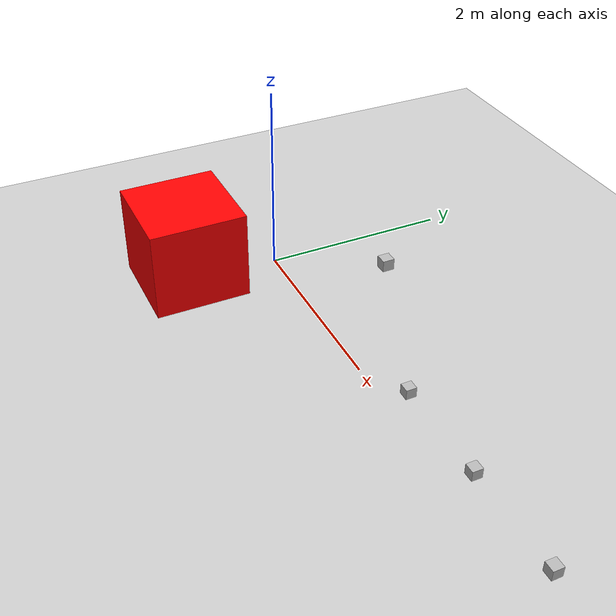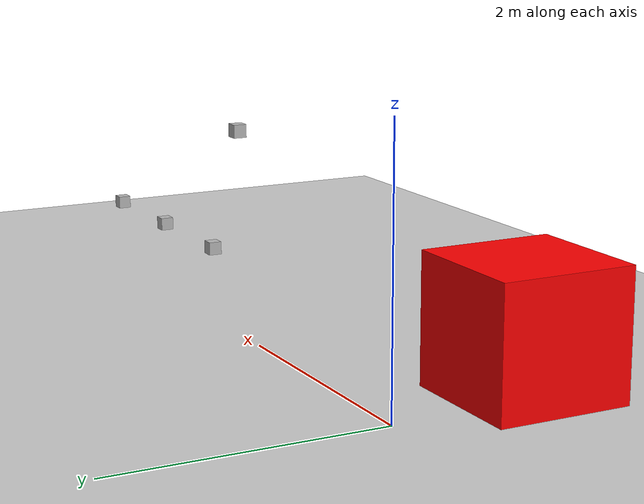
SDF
<sdf version="1.10">
 <world name="lidar_sensor">
  <physics name="1ms" type="ignored">
   <max_step_size>0.001</max_step_size>
   <real_time_factor>1</real_time_factor>
   <real_time_update_rate>1000</real_time_update_rate>
  </physics>
  <plugin name="gz::sim::systems::Physics" filename="gz-sim-physics-system"/>
  <plugin name="gz::sim::systems::Sensors" filename="gz-sim-sensors-system">
   <render_engine>ogre2</render_engine>
  </plugin>
  <plugin name="gz::sim::systems::UserCommands" filename="gz-sim-user-commands-system"/>
  <plugin name="gz::sim::systems::SceneBroadcaster" filename="gz-sim-scene-broadcaster-system"/>
  <gravity>0 0 -9.8000000000000007</gravity>
  <magnetic_field>5.5644999999999998e-06 2.2875799999999999e-05 -4.2388400000000002e-05</magnetic_field>
  <atmosphere type="adiabatic"/>
  <scene>
   <ambient>0.400000006 0.400000006 0.400000006 1</ambient>
   <background>0.699999988 0.699999988 0.699999988 1</background>
   <shadows>true</shadows>
  </scene>
  <model name="ground_plane">
   <static>true</static>
   <link name="link">
    <collision name="collision"><geometry><box><size>20 20 0.10000000000000001</size></box></geometry></collision>
    <visual name="visual">
     <geometry><box><size>20 20 0.10000000000000001</size></box></geometry>
     <material>
      <ambient>0.800000012 0.800000012 0.800000012 1</ambient>
      <diffuse>0.800000012 0.800000012 0.800000012 1</diffuse>
      <specular>0.800000012 0.800000012 0.800000012 1</specular>
     </material>
    </visual>
    <inertial>
     <mass>1</mass>
     <inertia><ixx>1</ixx><ixy>0</ixy><ixz>0</ixz><iyy>1</iyy><iyz>0</iyz><izz>1</izz></inertia>
    </inertial>
   </link>
  </model>
  <model name="box">
   <pose>0 -1 0.5 0 0 0</pose>
   <link name="box_link">
    <inertial>
     <inertia><ixx>1</ixx><ixy>0</ixy><ixz>0</ixz><iyy>1</iyy><iyz>0</iyz><izz>1</izz></inertia>
     <mass>1</mass>
    </inertial>
    <collision name="box_collision"><geometry><box><size>1 1 1</size></box></geometry></collision>
    <visual name="box_visual">
     <geometry><box><size>1 1 1</size></box></geometry>
     <material><ambient>1 0 0 1</ambient><diffuse>1 0 0 1</diffuse><specular>1 0 0 1</specular></material>
    </visual>
   </link>
   <static>false</static>
  </model>
  <model name="cameras_alone">
   <pose>2.5 -6.9388939039072284e-18 1.5 0 0 3.1400000000000001</pose>
   <link name="link">
    <pose>0.050000000000000003 0.050000000000000003 0.050000000000000003 0 0 0</pose>
    <inertial>
     <mass>0.10000000000000001</mass>
     <inertia>
      <ixx>0.00016666700000000001</ixx>
      <iyy>0.00016666700000000001</iyy>
      <izz>0.00016666700000000001</izz>
      <ixy>0</ixy>
      <ixz>0</ixz>
      <iyz>0</iyz>
     </inertia>
    </inertial>
    <collision name="collision">
     <geometry><box><size>0.10000000000000001 0.10000000000000001 0.10000000000000001</size></box></geometry>
    </collision>
    <visual name="visual">
     <geometry><box><size>0.10000000000000001 0.10000000000000001 0.10000000000000001</size></box></geometry>
    </visual>
    <sensor name="cameras_alone" type="camera">
     <topic>camera_alone</topic>
     <update_rate>30</update_rate>
     <enable_metrics>true</enable_metrics>
     <camera name="__default__">
      <horizontal_fov>1.0469999999999999</horizontal_fov>
      <image><width>320</width><height>240</height><format>RGB_INT8</format><anti_aliasing>4</anti_aliasing></image>
      <camera_info_topic>__default__</camera_info_topic>
      <triggered>false</triggered>
      <clip><near>0.10000000000000001</near><far>100</far></clip>
      <save enabled="false"><path>__default__</path></save>
      <visibility_mask>4294967295</visibility_mask>
      <noise><type>none</type><mean>0</mean><stddev>0</stddev></noise>
      <distortion><k1>0</k1><k2>0</k2><k3>0</k3><p1>0</p1><p2>0</p2><center>0.5 0.5</center></distortion>
      <lens>
       <type>stereographic</type>
       <scale_to_hfov>true</scale_to_hfov>
       <cutoff_angle>1.5707963267948966</cutoff_angle>
       <env_texture_size>256</env_texture_size>
      </lens>
     </camera>
    </sensor>
    <sensor name="depth_camera1" type="depth_camera">
     <topic>depth_camera</topic>
     <update_rate>10</update_rate>
     <enable_metrics>true</enable_metrics>
     <camera name="__default__">
      <horizontal_fov>1.05</horizontal_fov>
      <image>
       <width>320</width>
       <height>240</height>
       <format>R_FLOAT32</format>
       <anti_aliasing>4</anti_aliasing>
      </image>
      <camera_info_topic>__default__</camera_info_topic>
      <triggered>false</triggered>
      <clip><near>0.10000000000000001</near><far>10</far></clip>
      <save enabled="false"><path>__default__</path></save>
      <visibility_mask>4294967295</visibility_mask>
      <noise><type>none</type><mean>0</mean><stddev>0</stddev></noise>
      <distortion><k1>0</k1><k2>0</k2><k3>0</k3><p1>0</p1><p2>0</p2><center>0.5 0.5</center></distortion>
      <lens>
       <type>stereographic</type>
       <scale_to_hfov>true</scale_to_hfov>
       <cutoff_angle>1.5707963267948966</cutoff_angle>
       <env_texture_size>256</env_texture_size>
      </lens>
     </camera>
    </sensor>
   </link>
   <static>true</static>
  </model>
  <model name="camera_with_lidar">
   <pose>4 -6.9388939039072284e-18 0.5 0 0 3.1400000000000001</pose>
   <link name="link">
    <pose>0.050000000000000003 0.050000000000000003 0.050000000000000003 0 0 0</pose>
    <inertial>
     <mass>0.10000000000000001</mass>
     <inertia>
      <ixx>0.00016666700000000001</ixx>
      <iyy>0.00016666700000000001</iyy>
      <izz>0.00016666700000000001</izz>
      <ixy>0</ixy>
      <ixz>0</ixz>
      <iyz>0</iyz>
     </inertia>
    </inertial>
    <collision name="collision">
     <geometry><box><size>0.10000000000000001 0.10000000000000001 0.10000000000000001</size></box></geometry>
    </collision>
    <visual name="visual">
     <geometry><box><size>0.10000000000000001 0.10000000000000001 0.10000000000000001</size></box></geometry>
    </visual>
    <sensor name="camera" type="camera">
     <topic>camera</topic>
     <update_rate>30</update_rate>
     <enable_metrics>false</enable_metrics>
     <camera name="__default__">
      <horizontal_fov>1.0469999999999999</horizontal_fov>
      <image><width>320</width><height>240</height><format>RGB_INT8</format><anti_aliasing>4</anti_aliasing></image>
      <camera_info_topic>__default__</camera_info_topic>
      <triggered>false</triggered>
      <clip><near>0.10000000000000001</near><far>100</far></clip>
      <save enabled="false"><path>__default__</path></save>
      <visibility_mask>4294967295</visibility_mask>
      <noise><type>none</type><mean>0</mean><stddev>0</stddev></noise>
      <distortion><k1>0</k1><k2>0</k2><k3>0</k3><p1>0</p1><p2>0</p2><center>0.5 0.5</center></distortion>
      <lens>
       <type>stereographic</type>
       <scale_to_hfov>true</scale_to_hfov>
       <cutoff_angle>1.5707963267948966</cutoff_angle>
       <env_texture_size>256</env_texture_size>
      </lens>
     </camera>
    </sensor>
    <sensor name="gpu_lidar" type="gpu_lidar">
     <topic>lidar</topic>
     <update_rate>10</update_rate>
     <enable_metrics>true</enable_metrics>
     <lidar>
      <scan>
       <horizontal>
        <samples>640</samples>
        <resolution>1</resolution>
        <min_angle>-1.396263</min_angle>
        <max_angle>1.396263</max_angle>
       </horizontal>
       <vertical>
        <samples>1</samples>
        <min_angle>0</min_angle>
        <max_angle>0</max_angle>
        <resolution>0.01</resolution>
       </vertical>
      </scan>
      <range><min>0.080000000000000002</min><max>10</max><resolution>0.01</resolution></range>
      <noise><type>none</type><mean>0</mean><stddev>0</stddev></noise>
      <visibility_mask>4294967295</visibility_mask>
     </lidar>
    </sensor>
   </link>
   <static>true</static>
  </model>
  <model name="rgbd_camera">
   <pose>5 -6.9388939039072284e-18 0.5 0 0 3.1400000000000001</pose>
   <link name="link">
    <pose>0.050000000000000003 0.050000000000000003 0.050000000000000003 0 0 0</pose>
    <inertial>
     <mass>0.10000000000000001</mass>
     <inertia>
      <ixx>0.00016666700000000001</ixx>
      <iyy>0.00016666700000000001</iyy>
      <izz>0.00016666700000000001</izz>
      <ixy>0</ixy>
      <ixz>0</ixz>
      <iyz>0</iyz>
     </inertia>
    </inertial>
    <collision name="collision">
     <geometry><box><size>0.10000000000000001 0.10000000000000001 0.10000000000000001</size></box></geometry>
    </collision>
    <visual name="visual">
     <geometry><box><size>0.10000000000000001 0.10000000000000001 0.10000000000000001</size></box></geometry>
    </visual>
    <sensor name="rgbd_camera" type="rgbd_camera">
     <camera>
      <horizontal_fov>1.0469999999999999</horizontal_fov>
      <image><width>320</width><height>240</height></image>
      <clip><near>0.10000000000000001</near><far>100</far></clip>
     </camera>
     <always_on>true</always_on>
     <update_rate>30</update_rate>
     <visualize>true</visualize>
     <topic>rgbd_camera</topic>
     <enable_metrics>true</enable_metrics>
    </sensor>
   </link>
   <static>false</static>
  </model>
  <model name="thermal_camera">
   <pose>3 -6.9388939039072284e-18 0.5 0 0 3.1400000000000001</pose>
   <link name="link">
    <pose>0.050000000000000003 0.050000000000000003 0.050000000000000003 0 0 0</pose>
    <inertial>
     <mass>0.10000000000000001</mass>
     <inertia>
      <ixx>0.00016666700000000001</ixx>
      <iyy>0.00016666700000000001</iyy>
      <izz>0.00016666700000000001</izz>
      <ixy>0</ixy>
      <ixz>0</ixz>
      <iyz>0</iyz>
     </inertia>
    </inertial>
    <collision name="collision">
     <geometry><box><size>0.10000000000000001 0.10000000000000001 0.10000000000000001</size></box></geometry>
    </collision>
    <visual name="visual">
     <geometry><box><size>0.10000000000000001 0.10000000000000001 0.10000000000000001</size></box></geometry>
    </visual>
    <sensor name="thermal_camera" type="thermal_camera">
     <topic>thermal_camera</topic>
     <update_rate>30</update_rate>
     <enable_metrics>false</enable_metrics>
     <camera name="__default__">
      <horizontal_fov>1.0469999999999999</horizontal_fov>
      <image><width>320</width><height>240</height><format>RGB_INT8</format><anti_aliasing>4</anti_aliasing></image>
      <camera_info_topic>__default__</camera_info_topic>
      <triggered>false</triggered>
      <clip><near>0.10000000000000001</near><far>100</far></clip>
      <save enabled="false"><path>__default__</path></save>
      <visibility_mask>4294967295</visibility_mask>
      <noise><type>none</type><mean>0</mean><stddev>0</stddev></noise>
      <distortion><k1>0</k1><k2>0</k2><k3>0</k3><p1>0</p1><p2>0</p2><center>0.5 0.5</center></distortion>
      <lens>
       <type>stereographic</type>
       <scale_to_hfov>true</scale_to_hfov>
       <cutoff_angle>1.5707963267948966</cutoff_angle>
       <env_texture_size>256</env_texture_size>
      </lens>
     </camera>
    </sensor>
   </link>
   <static>false</static>
  </model>
  <light name="sun" type="directional">
   <pose>0 0 10 0 0 0</pose>
   <intensity>1</intensity>
   <direction>-0.5 0.10000000000000001 -0.90000000000000002</direction>
   <diffuse>0.800000012 0.800000012 0.800000012 1</diffuse>
   <specular>0.200000003 0.200000003 0.200000003 1</specular>
   <attenuation>
    <range>1000</range>
    <linear>0.01</linear>
    <constant>0.90000000000000002</constant>
    <quadratic>0.001</quadratic>
   </attenuation>
   <spot><inner_angle>0</inner_angle><outer_angle>0</outer_angle><falloff>0</falloff></spot>
  </light>
 </world>
</sdf>
